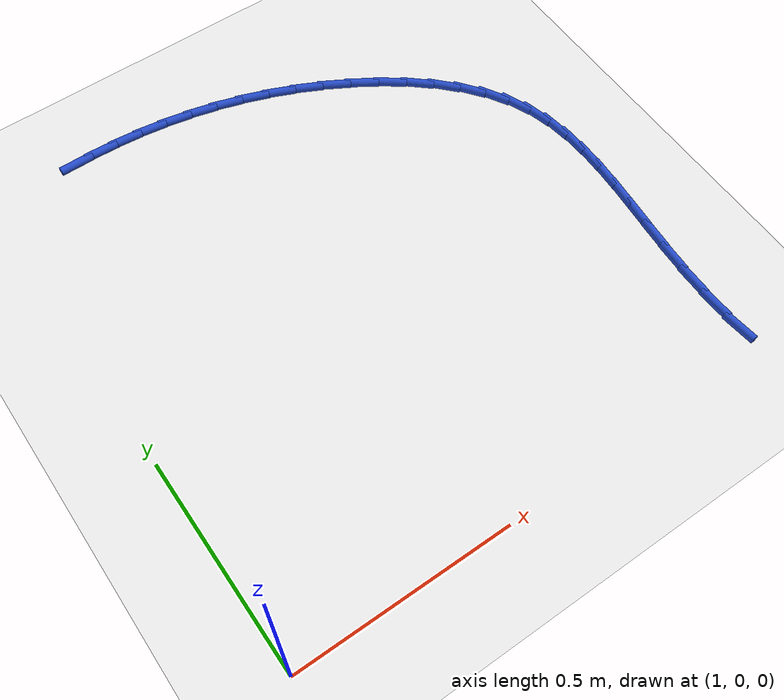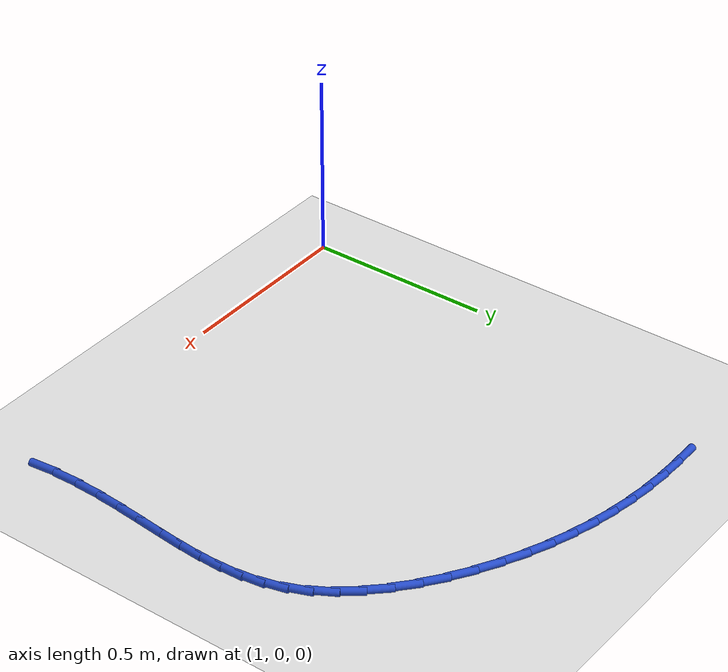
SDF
<sdf version="1.6">
 <world name="default">
  <model name="ground_plane">
   <static>1</static>
   <link name="link">
    <collision name="collision">
     <geometry><plane><normal>0 0 1</normal><size>100 100</size></plane></geometry>
     <surface><friction><ode><mu>100</mu><mu2>50</mu2></ode></friction></surface>
    </collision>
    <visual name="visual">
     <cast_shadows>0</cast_shadows>
     <geometry><plane><normal>0 0 1</normal><size>100 100</size></plane></geometry>
     <material>
      <script><uri>file://media/materials/scripts/gazebo.material</uri><name>Gazebo/WhiteGlow</name></script>
     </material>
    </visual>
   </link>
  </model>
  <model name="line">
   <link name="link_30">
    <pose>1.21165939415112 1.2441591079603724 0.01 0 1.57 0.0027208547114695144</pose>
    <collision name="collision">
     <geometry><cylinder><radius>0.01</radius><length>0.08</length></cylinder></geometry>
    </collision>
    <visual name="visual">
     <material>
      <script><name>Gazebo/Blue</name><uri>file://media/materials/scripts/gazebo.material</uri></script>
     </material>
     <geometry><cylinder><radius>0.01</radius><length>0.08</length></cylinder></geometry>
    </visual>
   </link>
   <link name="link_31">
    <pose>1.273806000184462 1.2443282002634666 0.01 0 1.57 -0.043653580272426086</pose>
    <collision name="collision">
     <geometry><cylinder><radius>0.01</radius><length>0.08</length></cylinder></geometry>
    </collision>
    <visual name="visual">
     <material>
      <script><name>Gazebo/Blue</name><uri>file://media/materials/scripts/gazebo.material</uri></script>
     </material>
     <geometry><cylinder><radius>0.01</radius><length>0.08</length></cylinder></geometry>
    </visual>
   </link>
   <link name="link_32">
    <pose>1.335724242116794 1.2416235290618773 0.01 0 1.57 -0.09205341990811869</pose>
    <collision name="collision">
     <geometry><cylinder><radius>0.01</radius><length>0.08</length></cylinder></geometry>
    </collision>
    <visual name="visual">
     <material>
      <script><name>Gazebo/Blue</name><uri>file://media/materials/scripts/gazebo.material</uri></script>
     </material>
     <geometry><cylinder><radius>0.01</radius><length>0.08</length></cylinder></geometry>
    </visual>
   </link>
   <link name="link_33">
    <pose>1.3974018977546199 1.2359297982627904 0.01 0 1.57 -0.14226571591922704</pose>
    <collision name="collision">
     <geometry><cylinder><radius>0.01</radius><length>0.08</length></cylinder></geometry>
    </collision>
    <visual name="visual">
     <material>
      <script><name>Gazebo/Blue</name><uri>file://media/materials/scripts/gazebo.material</uri></script>
     </material>
     <geometry><cylinder><radius>0.01</radius><length>0.08</length></cylinder></geometry>
    </visual>
   </link>
   <link name="link_34">
    <pose>1.4588267449044412 1.2271317117733933 0.01 0 1.57 -0.19402531327778358</pose>
    <collision name="collision">
     <geometry><cylinder><radius>0.01</radius><length>0.08</length></cylinder></geometry>
    </collision>
    <visual name="visual">
     <material>
      <script><name>Gazebo/Blue</name><uri>file://media/materials/scripts/gazebo.material</uri></script>
     </material>
     <geometry><cylinder><radius>0.01</radius><length>0.08</length></cylinder></geometry>
    </visual>
   </link>
   <link name="link_35">
    <pose>1.5199865613727617 1.2151139735008718 0.01 0 1.57 -0.24701889129559662</pose>
    <collision name="collision">
     <geometry><cylinder><radius>0.01</radius><length>0.08</length></cylinder></geometry>
    </collision>
    <visual name="visual">
     <material>
      <script><name>Gazebo/Blue</name><uri>file://media/materials/scripts/gazebo.material</uri></script>
     </material>
     <geometry><cylinder><radius>0.01</radius><length>0.08</length></cylinder></geometry>
    </visual>
   </link>
   <link name="link_36">
    <pose>1.5808691249660831 1.199761287352413 0.01 0 1.57 -0.30089281398402196</pose>
    <collision name="collision">
     <geometry><cylinder><radius>0.01</radius><length>0.08</length></cylinder></geometry>
    </collision>
    <visual name="visual">
     <material>
      <script><name>Gazebo/Blue</name><uri>file://media/materials/scripts/gazebo.material</uri></script>
     </material>
     <geometry><cylinder><radius>0.01</radius><length>0.08</length></cylinder></geometry>
    </visual>
   </link>
   <link name="link_37">
    <pose>1.6414622134909091 1.1809583572352034 0.01 0 1.57 -0.35526452475243836</pose>
    <collision name="collision">
     <geometry><cylinder><radius>0.01</radius><length>0.08</length></cylinder></geometry>
    </collision>
    <visual name="visual">
     <material>
      <script><name>Gazebo/Blue</name><uri>file://media/materials/scripts/gazebo.material</uri></script>
     </material>
     <geometry><cylinder><radius>0.01</radius><length>0.08</length></cylinder></geometry>
    </visual>
   </link>
   <link name="link_38">
    <pose>1.7017536047537414 1.1585898870564286 0.01 0 1.57 -0.4097375191023912</pose>
    <collision name="collision">
     <geometry><cylinder><radius>0.01</radius><length>0.08</length></cylinder></geometry>
    </collision>
    <visual name="visual">
     <material>
      <script><name>Gazebo/Blue</name><uri>file://media/materials/scripts/gazebo.material</uri></script>
     </material>
     <geometry><cylinder><radius>0.01</radius><length>0.08</length></cylinder></geometry>
    </visual>
   </link>
   <link name="link_39">
    <pose>1.7617303445144914 1.1325408388927958 0.01 0 1.57 -0.4644183963443468</pose>
    <collision name="collision">
     <geometry><cylinder><radius>0.01</radius><length>0.08</length></cylinder></geometry>
    </collision>
    <visual name="visual">
     <material>
      <script><name>Gazebo/Blue</name><uri>file://media/materials/scripts/gazebo.material</uri></script>
     </material>
     <geometry><cylinder><radius>0.01</radius><length>0.08</length></cylinder></geometry>
    </visual>
   </link>
   <link name="link_40">
    <pose>1.8211273059988067 1.102785108042775 0.01 0 1.57 -0.5213012362609237</pose>
    <collision name="collision">
     <geometry><cylinder><radius>0.01</radius><length>0.08</length></cylinder></geometry>
    </collision>
    <visual name="visual">
     <material>
      <script><name>Gazebo/Blue</name><uri>file://media/materials/scripts/gazebo.material</uri></script>
     </material>
     <geometry><cylinder><radius>0.01</radius><length>0.08</length></cylinder></geometry>
    </visual>
   </link>
   <link name="link_41">
    <pose>1.8790594033090129 1.0695152296434767 0.01 0 1.57 -0.5825694897813941</pose>
    <collision name="collision">
     <geometry><cylinder><radius>0.01</radius><length>0.08</length></cylinder></geometry>
    </collision>
    <visual name="visual">
     <material>
      <script><name>Gazebo/Blue</name><uri>file://media/materials/scripts/gazebo.material</uri></script>
     </material>
     <geometry><cylinder><radius>0.01</radius><length>0.08</length></cylinder></geometry>
    </visual>
   </link>
   <link name="link_42">
    <pose>1.9345479951219477 1.0329567328510714 0.01 0 1.57 -0.6504921157923433</pose>
    <collision name="collision">
     <geometry><cylinder><radius>0.01</radius><length>0.08</length></cylinder></geometry>
    </collision>
    <visual name="visual">
     <material>
      <script><name>Gazebo/Blue</name><uri>file://media/materials/scripts/gazebo.material</uri></script>
     </material>
     <geometry><cylinder><radius>0.01</radius><length>0.08</length></cylinder></geometry>
    </visual>
   </link>
   <link name="link_43">
    <pose>1.9866144401144525 0.9933351468217289 0.01 0 1.57 -0.7276922920500245</pose>
    <collision name="collision">
     <geometry><cylinder><radius>0.01</radius><length>0.08</length></cylinder></geometry>
    </collision>
    <visual name="visual">
     <material>
      <script><name>Gazebo/Blue</name><uri>file://media/materials/scripts/gazebo.material</uri></script>
     </material>
     <geometry><cylinder><radius>0.01</radius><length>0.08</length></cylinder></geometry>
    </visual>
   </link>
   <link name="link_44">
    <pose>2.0342800969633656 0.9508760007116203 0.01 0 1.57 -0.8172673194120729</pose>
    <collision name="collision">
     <geometry><cylinder><radius>0.01</radius><length>0.08</length></cylinder></geometry>
    </collision>
    <visual name="visual">
     <material>
      <script><name>Gazebo/Blue</name><uri>file://media/materials/scripts/gazebo.material</uri></script>
     </material>
     <geometry><cylinder><radius>0.01</radius><length>0.08</length></cylinder></geometry>
    </visual>
   </link>
   <link name="link_45">
    <pose>2.076566324345527 0.9058048236769156 0.01 0 1.57 -0.92279416771687</pose>
    <collision name="collision">
     <geometry><cylinder><radius>0.01</radius><length>0.08</length></cylinder></geometry>
    </collision>
    <visual name="visual">
     <material>
      <script><name>Gazebo/Blue</name><uri>file://media/materials/scripts/gazebo.material</uri></script>
     </material>
     <geometry><cylinder><radius>0.01</radius><length>0.08</length></cylinder></geometry>
    </visual>
   </link>
   <link name="link_46">
    <pose>2.1124944809377757 0.8583471448737858 0.01 0 1.57 -1.0480428664815835</pose>
    <collision name="collision">
     <geometry><cylinder><radius>0.01</radius><length>0.08</length></cylinder></geometry>
    </collision>
    <visual name="visual">
     <material>
      <script><name>Gazebo/Blue</name><uri>file://media/materials/scripts/gazebo.material</uri></script>
     </material>
     <geometry><cylinder><radius>0.01</radius><length>0.08</length></cylinder></geometry>
    </visual>
   </link>
   <link name="link_47">
    <pose>2.141085925416951 0.8087284934584008 0.01 0 1.57 -1.1909901973263102</pose>
    <collision name="collision">
     <geometry><cylinder><radius>0.01</radius><length>0.08</length></cylinder></geometry>
    </collision>
    <visual name="visual">
     <material>
      <script><name>Gazebo/Blue</name><uri>file://media/materials/scripts/gazebo.material</uri></script>
     </material>
     <geometry><cylinder><radius>0.01</radius><length>0.08</length></cylinder></geometry>
    </visual>
   </link>
   <link name="link_48">
    <pose>2.161678651543507 0.7571419497276989 0.01 0 1.57 -1.3265292648676759</pose>
    <collision name="collision">
     <geometry><cylinder><radius>0.01</radius><length>0.08</length></cylinder></geometry>
    </collision>
    <visual name="visual">
     <material>
      <script><name>Gazebo/Blue</name><uri>file://media/materials/scripts/gazebo.material</uri></script>
     </material>
     <geometry><cylinder><radius>0.01</radius><length>0.08</length></cylinder></geometry>
    </visual>
   </link>
   <link name="link_49">
    <pose>2.1750145105747314 0.7036367262373159 0.01 0 1.57 -1.4414168435089099</pose>
    <collision name="collision">
     <geometry><cylinder><radius>0.01</radius><length>0.08</length></cylinder></geometry>
    </collision>
    <visual name="visual">
     <material>
      <script><name>Gazebo/Blue</name><uri>file://media/materials/scripts/gazebo.material</uri></script>
     </material>
     <geometry><cylinder><radius>0.01</radius><length>0.08</length></cylinder></geometry>
    </visual>
   </link>
   <link name="link_50">
    <pose>2.182224289533406 0.6482221772878852 0.01 0 1.57 -1.5321778576836398</pose>
    <collision name="collision">
     <geometry><cylinder><radius>0.01</radius><length>0.08</length></cylinder></geometry>
    </collision>
    <visual name="visual">
     <material>
      <script><name>Gazebo/Blue</name><uri>file://media/materials/scripts/gazebo.material</uri></script>
     </material>
     <geometry><cylinder><radius>0.01</radius><length>0.08</length></cylinder></geometry>
    </visual>
   </link>
   <link name="link_51">
    <pose>2.184438789614968 0.5909076557276243 0.01 0 1.57 1.5429347154754398</pose>
    <collision name="collision">
     <geometry><cylinder><radius>0.01</radius><length>0.08</length></cylinder></geometry>
    </collision>
    <visual name="visual">
     <material>
      <script><name>Gazebo/Blue</name><uri>file://media/materials/scripts/gazebo.material</uri></script>
     </material>
     <geometry><cylinder><radius>0.01</radius><length>0.08</length></cylinder></geometry>
    </visual>
   </link>
   <link name="link_52">
    <pose>2.1827888120148544 0.5317025144047477 0.01 0 1.57 1.4991576019378563</pose>
    <collision name="collision">
     <geometry><cylinder><radius>0.01</radius><length>0.08</length></cylinder></geometry>
    </collision>
    <visual name="visual">
     <material>
      <script><name>Gazebo/Blue</name><uri>file://media/materials/scripts/gazebo.material</uri></script>
     </material>
     <geometry><cylinder><radius>0.01</radius><length>0.08</length></cylinder></geometry>
    </visual>
   </link>
   <link name="link_53">
    <pose>2.1784051579285033 0.47061610616747357 0.01 0 1.57 1.4759941804627776</pose>
    <collision name="collision">
     <geometry><cylinder><radius>0.01</radius><length>0.08</length></cylinder></geometry>
    </collision>
    <visual name="visual">
     <material>
      <script><name>Gazebo/Blue</name><uri>file://media/materials/scripts/gazebo.material</uri></script>
     </material>
     <geometry><cylinder><radius>0.01</radius><length>0.08</length></cylinder></geometry>
    </visual>
   </link>
   <link name="link_54">
    <pose>2.1724186285513505 0.40765778386401685 0.01 0 1.57 1.471486404205837</pose>
    <collision name="collision">
     <geometry><cylinder><radius>0.01</radius><length>0.08</length></cylinder></geometry>
    </collision>
    <visual name="visual">
     <material>
      <script><name>Gazebo/Blue</name><uri>file://media/materials/scripts/gazebo.material</uri></script>
     </material>
     <geometry><cylinder><radius>0.01</radius><length>0.08</length></cylinder></geometry>
    </visual>
   </link>
   <link name="link_55">
    <pose>2.1659600250788347 0.34283690034259495 0.01 0 1.57 1.4840262926549863</pose>
    <collision name="collision">
     <geometry><cylinder><radius>0.01</radius><length>0.08</length></cylinder></geometry>
    </collision>
    <visual name="visual">
     <material>
      <script><name>Gazebo/Blue</name><uri>file://media/materials/scripts/gazebo.material</uri></script>
     </material>
     <geometry><cylinder><radius>0.01</radius><length>0.08</length></cylinder></geometry>
    </visual>
   </link>
   <link name="link_56">
    <pose>2.1601601487063906 0.27616280845142305 0.01 0 1.57 1.5123331337615487</pose>
    <collision name="collision">
     <geometry><cylinder><radius>0.01</radius><length>0.08</length></cylinder></geometry>
    </collision>
    <visual name="visual">
     <material>
      <script><name>Gazebo/Blue</name><uri>file://media/materials/scripts/gazebo.material</uri></script>
     </material>
     <geometry><cylinder><radius>0.01</radius><length>0.08</length></cylinder></geometry>
    </visual>
   </link>
   <link name="link_57">
    <pose>2.156149800629458 0.2076448610387186 0.01 0 1.57 1.5553038830203822</pose>
    <collision name="collision">
     <geometry><cylinder><radius>0.01</radius><length>0.08</length></cylinder></geometry>
    </collision>
    <visual name="visual">
     <material>
      <script><name>Gazebo/Blue</name><uri>file://media/materials/scripts/gazebo.material</uri></script>
     </material>
     <geometry><cylinder><radius>0.01</radius><length>0.08</length></cylinder></geometry>
    </visual>
   </link>
   <link name="link_58">
    <pose>2.1550597820434727 0.1372924109526968 0.01 0 1.57 -1.5297939587949907</pose>
    <collision name="collision">
     <geometry><cylinder><radius>0.01</radius><length>0.08</length></cylinder></geometry>
    </collision>
    <visual name="visual">
     <material>
      <script><name>Gazebo/Blue</name><uri>file://media/materials/scripts/gazebo.material</uri></script>
     </material>
     <geometry><cylinder><radius>0.01</radius><length>0.08</length></cylinder></geometry>
    </visual>
   </link>
   <link name="link_59">
    <pose>2.1580208941438714 0.0651148110415749 0.01 0 1.57 -1.4627339252257787</pose>
    <collision name="collision">
     <geometry><cylinder><radius>0.01</radius><length>0.08</length></cylinder></geometry>
    </collision>
    <visual name="visual">
     <material>
      <script><name>Gazebo/Blue</name><uri>file://media/materials/scripts/gazebo.material</uri></script>
     </material>
     <geometry><cylinder><radius>0.01</radius><length>0.08</length></cylinder></geometry>
    </visual>
   </link>
  </model>
 </world>
</sdf>
